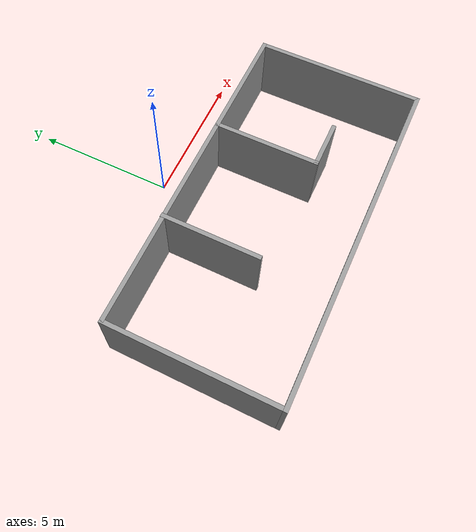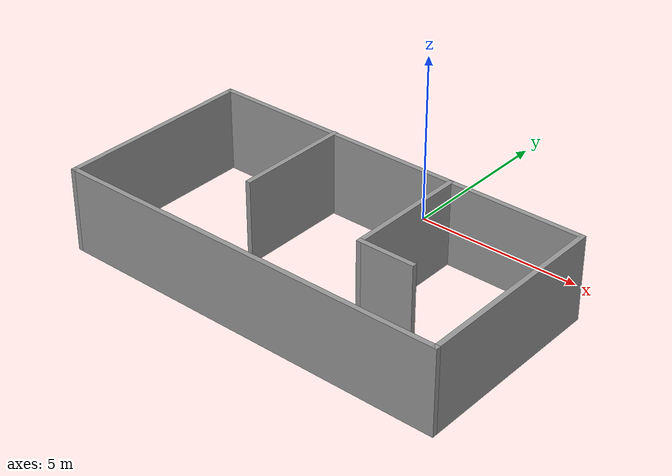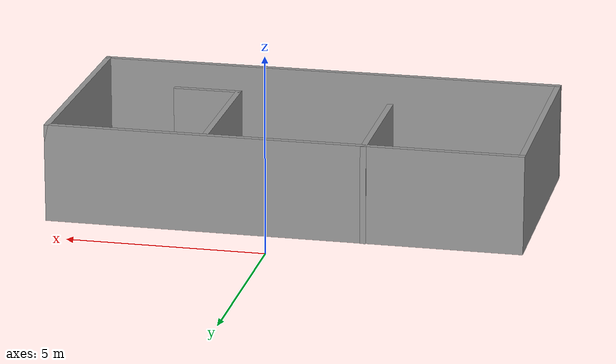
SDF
<?xml version='1.0'?>
<sdf version='1.7'>
  <model name='my_room'>
    <pose>-0.115 -3.6225 0 0 -0 0</pose>
    <link name='Wall_0'>
      <collision name='Wall_0_Collision'>
        <geometry>
          <box>
            <size>12 0.15 2.5</size>
          </box>
        </geometry>
        <pose>0 0 1.25 0 -0 0</pose>
      </collision>
      <visual name='Wall_0_Visual'>
        <pose>0 0 1.25 0 -0 0</pose>
        <geometry>
          <box>
            <size>12 0.15 2.5</size>
          </box>
        </geometry>
        <material>
          <script>
            <uri>file://media/materials/scripts/gazebo.material</uri>
            <name>Gazebo/Grey</name>
          </script>
          <ambient>1 1 1 1</ambient>
        </material>
        <meta>
          <layer>0</layer>
        </meta>
      </visual>
      <pose>0 2.3025 0 0 -0 0</pose>
    </link>
    <link name='Wall_2'>
      <collision name='Wall_2_Collision'>
        <geometry>
          <box>
            <size>6 0.15 2.5</size>
          </box>
        </geometry>
        <pose>0 0 1.25 0 -0 0</pose>
      </collision>
      <visual name='Wall_2_Visual'>
        <pose>0 0 1.25 0 -0 0</pose>
        <geometry>
          <box>
            <size>6 0.15 2.5</size>
          </box>
        </geometry>
        <material>
          <script>
            <uri>file://media/materials/scripts/gazebo.material</uri>
            <name>Gazebo/Grey</name>
          </script>
          <ambient>1 1 1 1</ambient>
        </material>
        <meta>
          <layer>0</layer>
        </meta>
      </visual>
      <pose>5.925 -0.6225 0 0 -0 -1.5708</pose>
    </link>
    <link name='Wall_3'>
      <collision name='Wall_3_Collision'>
        <geometry>
          <box>
            <size>12 0.15 2.5</size>
          </box>
        </geometry>
        <pose>0 0 1.25 0 -0 0</pose>
      </collision>
      <visual name='Wall_3_Visual'>
        <pose>0 0 1.25 0 -0 0</pose>
        <geometry>
          <box>
            <size>12 0.15 2.5</size>
          </box>
        </geometry>
        <material>
          <script>
            <uri>file://media/materials/scripts/gazebo.material</uri>
            <name>Gazebo/Grey</name>
          </script>
          <ambient>1 1 1 1</ambient>
        </material>
        <meta>
          <layer>0</layer>
        </meta>
      </visual>
      <pose>0 -3.5475 0 0 -0 3.14159</pose>
    </link>
    <link name='Wall_4'>
      <collision name='Wall_4_Collision'>
        <geometry>
          <box>
            <size>6 0.15 2.5</size>
          </box>
        </geometry>
        <pose>0 0 1.25 0 -0 0</pose>
      </collision>
      <visual name='Wall_4_Visual'>
        <pose>0 0 1.25 0 -0 0</pose>
        <geometry>
          <box>
            <size>6 0.15 2.5</size>
          </box>
        </geometry>
        <material>
          <script>
            <uri>file://media/materials/scripts/gazebo.material</uri>
            <name>Gazebo/Grey</name>
          </script>
          <ambient>1 1 1 1</ambient>
        </material>
        <meta>
          <layer>0</layer>
        </meta>
      </visual>
      <pose>-5.925 -0.6225 0 0 -0 1.5708</pose>
    </link>
    <link name='Wall_6'>
      <collision name='Wall_6_Collision'>
        <geometry>
          <box>
            <size>3.5 0.15 2.5</size>
          </box>
        </geometry>
        <pose>0 0 1.25 0 -0 0</pose>
      </collision>
      <visual name='Wall_6_Visual'>
        <pose>0 0 1.25 0 -0 0</pose>
        <geometry>
          <box>
            <size>3.5 0.15 2.5</size>
          </box>
        </geometry>
        <material>
          <script>
            <uri>file://media/materials/scripts/gazebo.material</uri>
            <name>Gazebo/Grey</name>
          </script>
          <ambient>1 1 1 1</ambient>
        </material>
        <meta>
          <layer>0</layer>
        </meta>
      </visual>
      <pose>-2.04078 0.647987 0 0 -0 -1.5708</pose>
    </link>
    <link name='Wall_8'>
      <collision name='Wall_8_Collision'>
        <geometry>
          <box>
            <size>3.75 0.15 2.5</size>
          </box>
        </geometry>
        <pose>0 0 1.25 0 -0 0</pose>
      </collision>
      <visual name='Wall_8_Visual'>
        <pose>0 0 1.25 0 -0 0</pose>
        <geometry>
          <box>
            <size>3.75 0.15 2.5</size>
          </box>
        </geometry>
        <material>
          <script>
            <uri>file://media/materials/scripts/gazebo.material</uri>
            <name>Gazebo/Grey</name>
          </script>
          <ambient>1 1 1 1</ambient>
        </material>
        <meta>
          <layer>0</layer>
        </meta>
      </visual>
      <pose>1.92946 0.470517 0 0 -0 -1.5708</pose>
    </link>
    <link name='Wall_9'>
      <collision name='Wall_9_Collision'>
        <geometry>
          <box>
            <size>1.75 0.15 2.5</size>
          </box>
        </geometry>
        <pose>0 0 1.25 0 -0 0</pose>
      </collision>
      <visual name='Wall_9_Visual'>
        <pose>0 0 1.25 0 -0 0</pose>
        <geometry>
          <box>
            <size>1.75 0.15 2.5</size>
          </box>
        </geometry>
        <material>
          <script>
            <uri>file://media/materials/scripts/gazebo.material</uri>
            <name>Gazebo/Grey</name>
          </script>
          <ambient>1 1 1 1</ambient>
        </material>
        <meta>
          <layer>0</layer>
        </meta>
      </visual>
      <pose>2.72946 -1.32948 0 0 -0 0</pose>
    </link>
    <static>1</static>
  </model>
</sdf>
